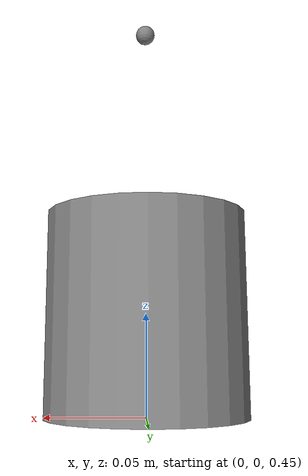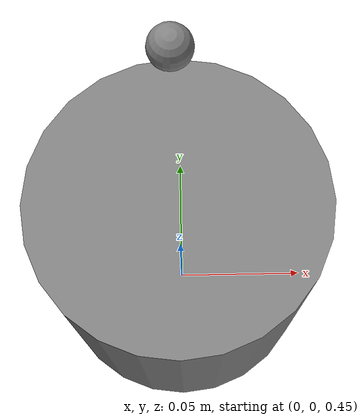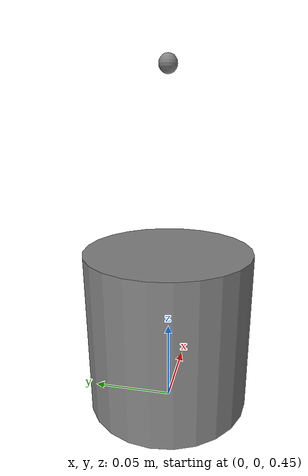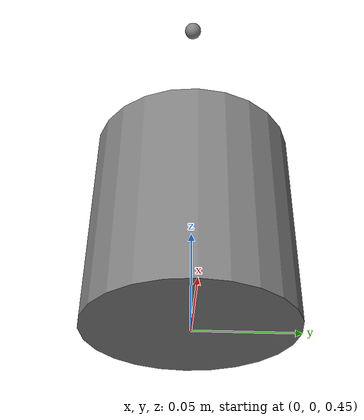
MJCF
<mujoco model="two_dof_robot">
  <compiler angle="radian" meshdir="assets/" texturedir="assets/" />
  <extension>
    <plugin plugin="mujoco.plugin.lidar">
      <instance name="lidar_1">
        <config key="size" value="24 1" />
        <config key="fov" value=".6 0.0" />
        <config key="max_range" value="13.0" />
      </instance>
    </plugin>
  </extension>

  <worldbody>

    <body name="lidar_mount" pos="0 0 0.5">
            <inertial mass="1.0" pos="0 0 0" diaginertia="0.001 0.001 0.001"></inertial>
            <geom type="cylinder" size="0.05 0.05" mass="1" pos="0 0 0" />
            <site name="lidar_sensor_frame" pos="0 0 .15"/>
        </body>
  </worldbody>
  <option integrator="implicitfast" />
  <default>
    <default class="visual">
      <geom group="2" type="mesh" contype="0" conaffinity="0" />
    </default>
    <default class="collision">
      <geom group="3" type="mesh" />
    </default>
  </default>

  <sensor>
    <plugin name="lidar_1" instance="lidar_1" objtype="site" objname="lidar_sensor_frame"/>
  </sensor>

</mujoco>
